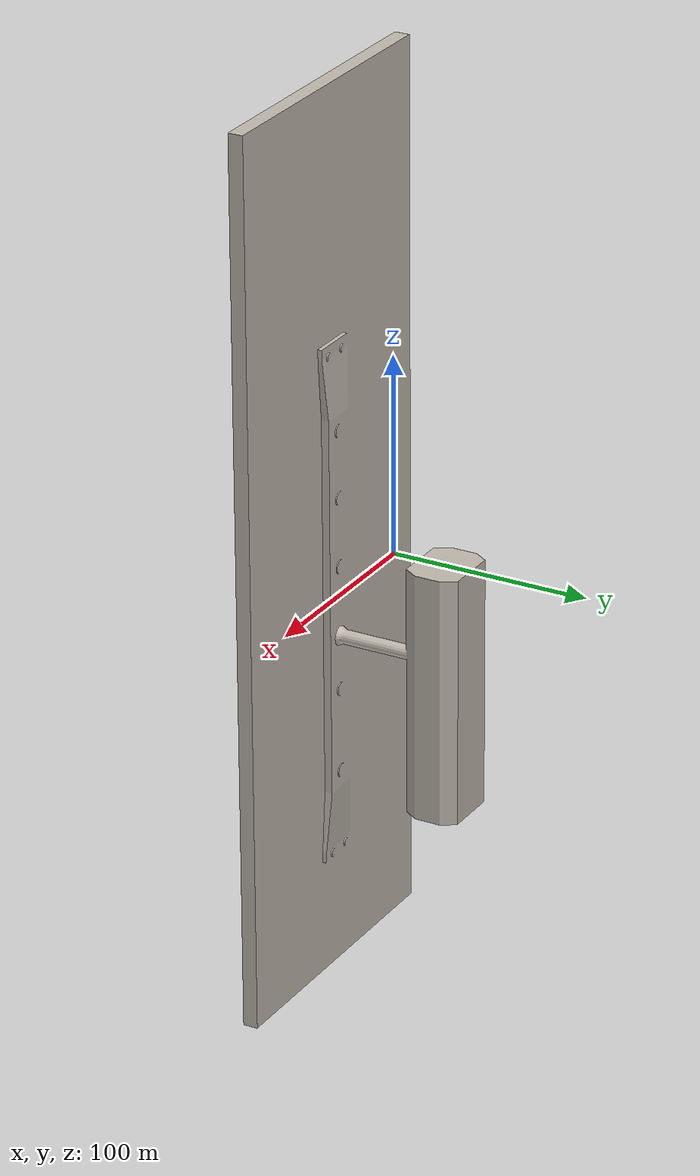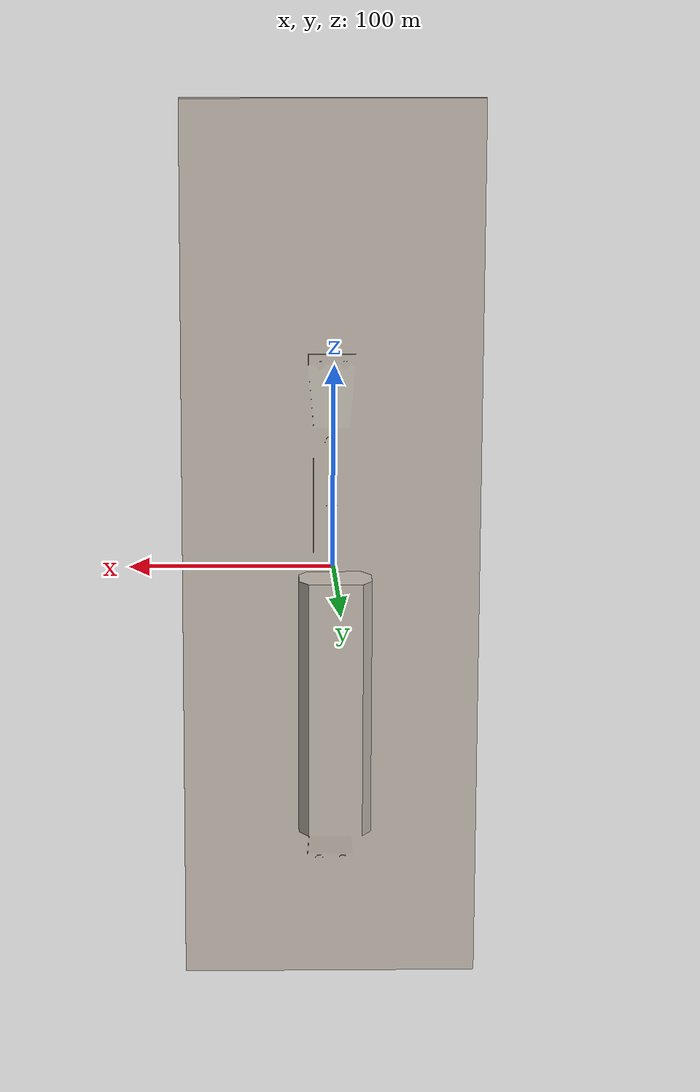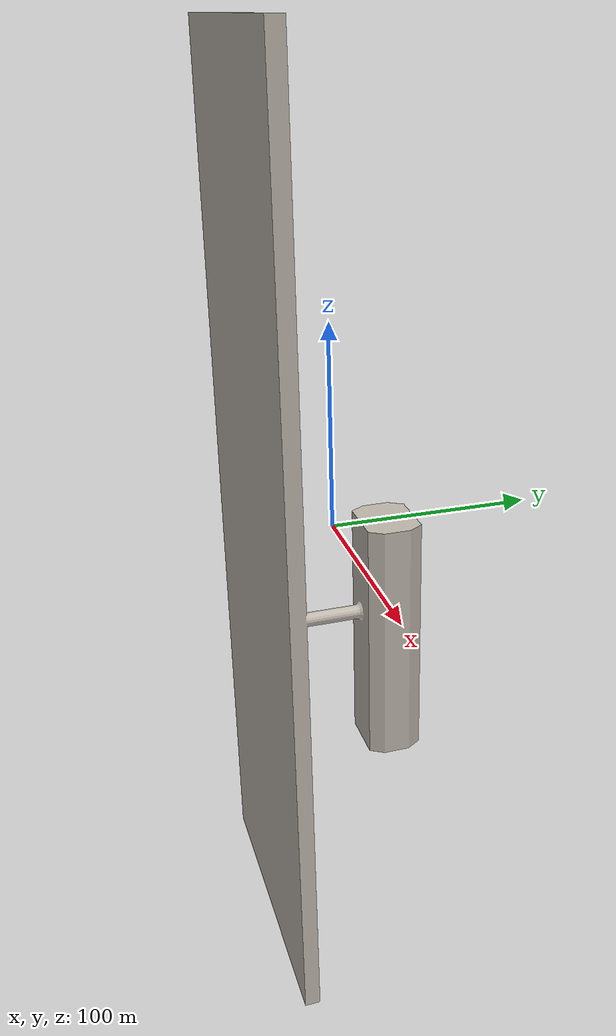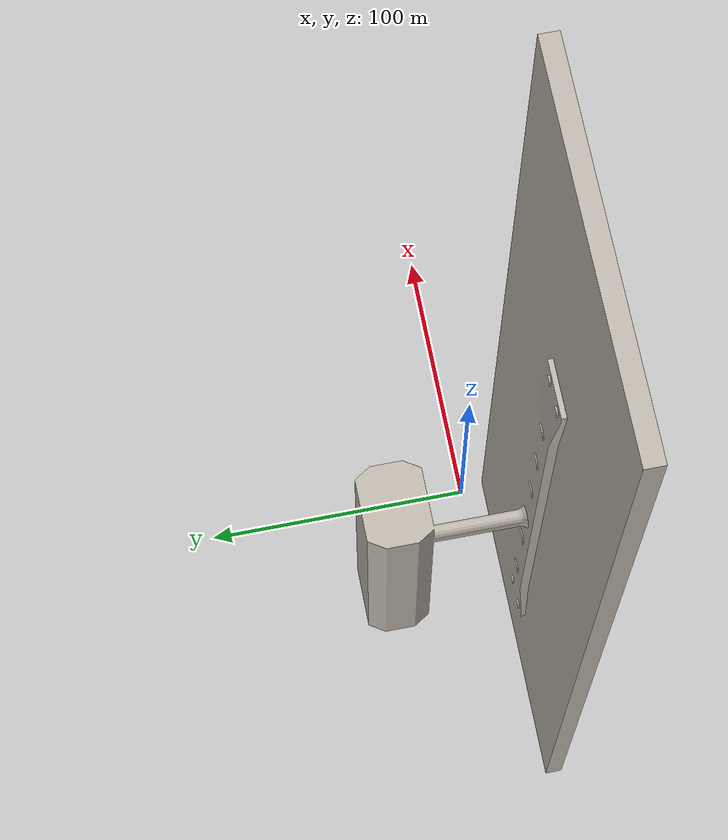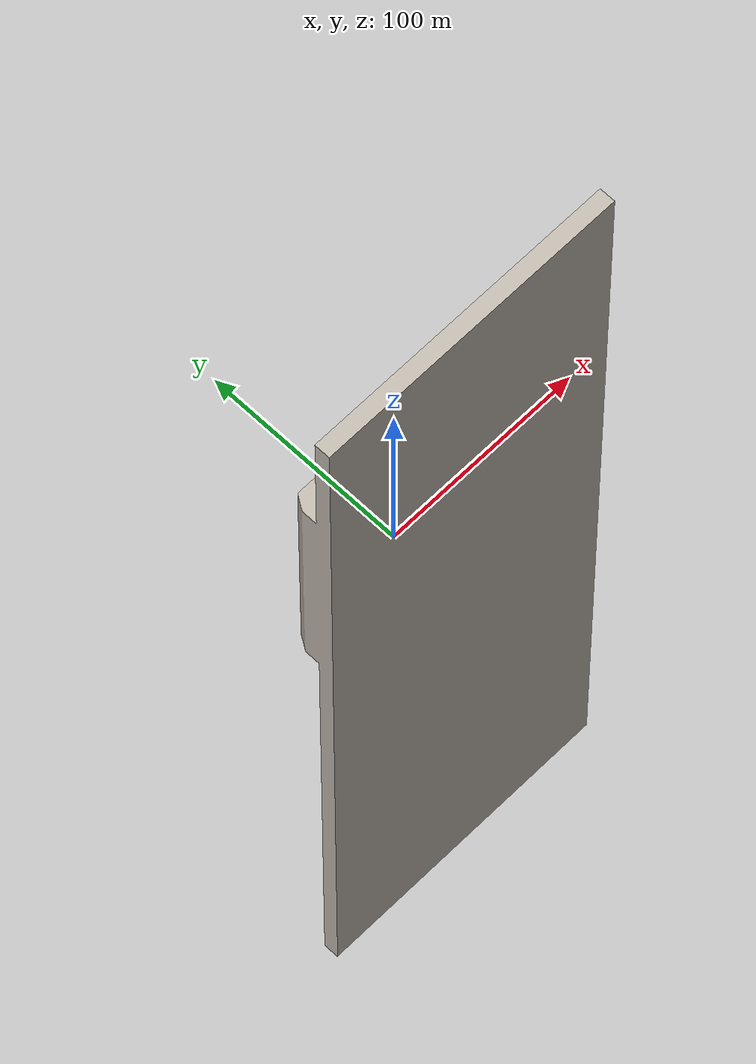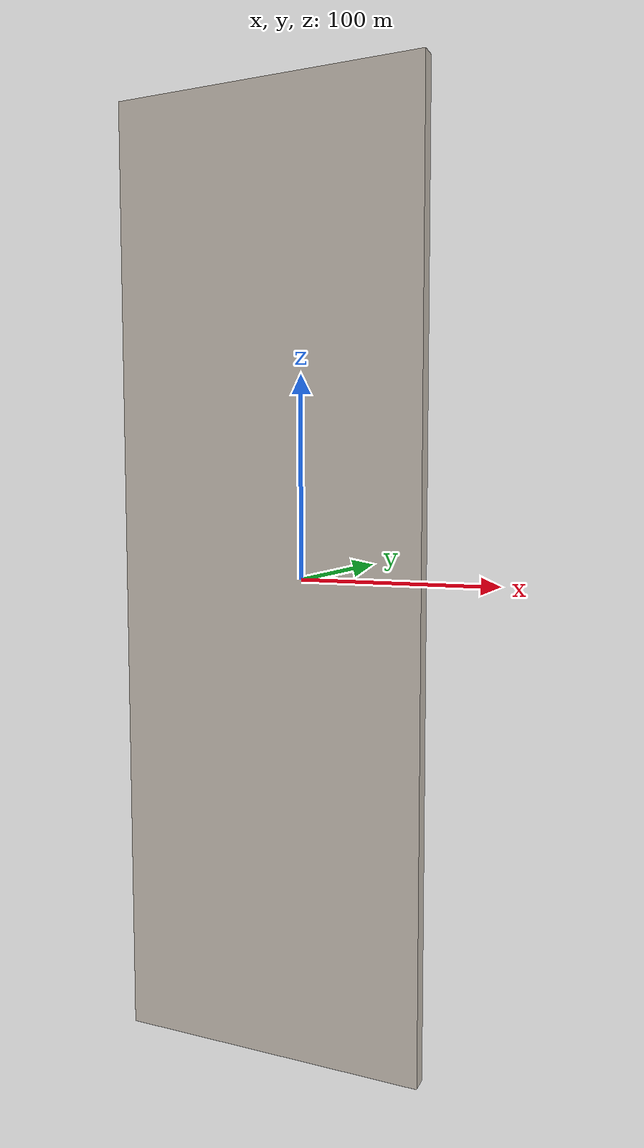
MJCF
<?xml version="1.0" encoding="utf-8"?>
<mujoco model="Trowel">
  <default>
    <default class="visual">
      <geom group="2" type="mesh" contype="0" conaffinity="0"/>
    </default>
    <default class="collision">
      <geom group="3" type="mesh"/>
    </default>
  </default>
  <asset>
    <texture type="2d" name="Trowel_BaseColor" file="Trowel/Trowel_BaseColor.png"/>
    <material name="material_0" texture="Trowel_BaseColor" specular="1.0" shininess="0.5"/>
    <mesh file="Trowel/Trowel.obj" name="Trowel"/>
    <mesh file="Trowel/Trowel_collision_0.obj" name="Trowel_collision_0"/>
    <mesh file="Trowel/Trowel_collision_1.obj" name="Trowel_collision_1"/>
    <mesh file="Trowel/Trowel_collision_2.obj" name="Trowel_collision_2"/>
  </asset>
  <worldbody>
    <body name="Trowel">
      <inertial mass="0.1" diaginertia="0.001 0.001 0.001" pos="0 0 0"/>
      <geom material="material_0" mesh="Trowel" class="visual"/>
      <geom mesh="Trowel_collision_0" rgba="0.5968978383863032 0.43119720183774013 0.7390594714308054 1" class="collision"/>
      <geom mesh="Trowel_collision_1" rgba="0.5474219509996819 0.4577977567960879 0.5416682720675242 1" class="collision"/>
      <geom mesh="Trowel_collision_2" rgba="0.32861549206692087 0.49728870192285 0.579448577214901 1" class="collision"/>
    </body>
  </worldbody>
</mujoco>
